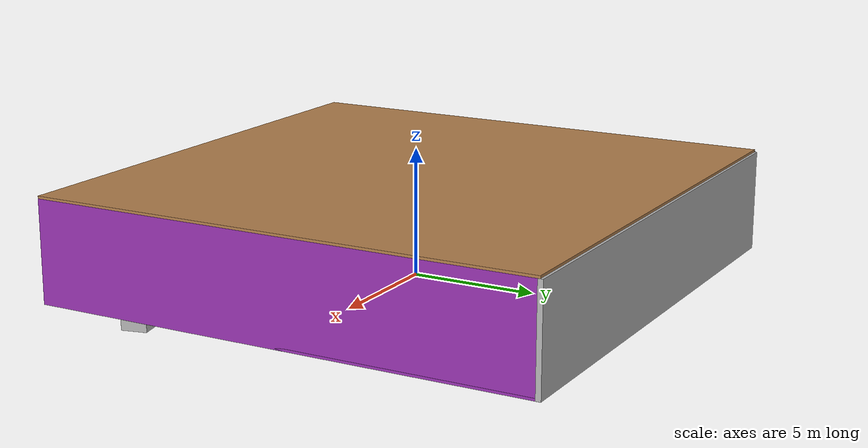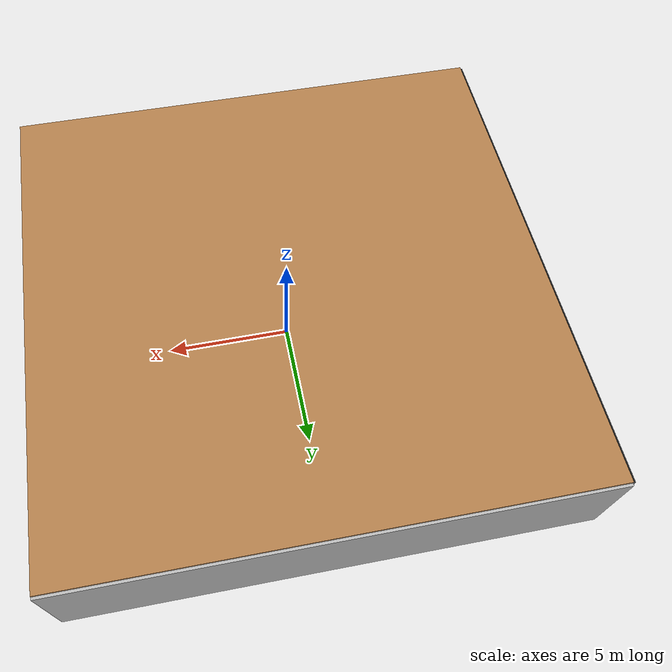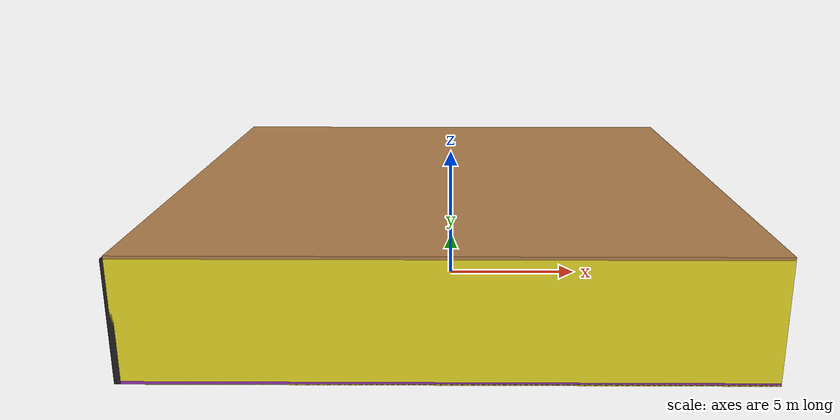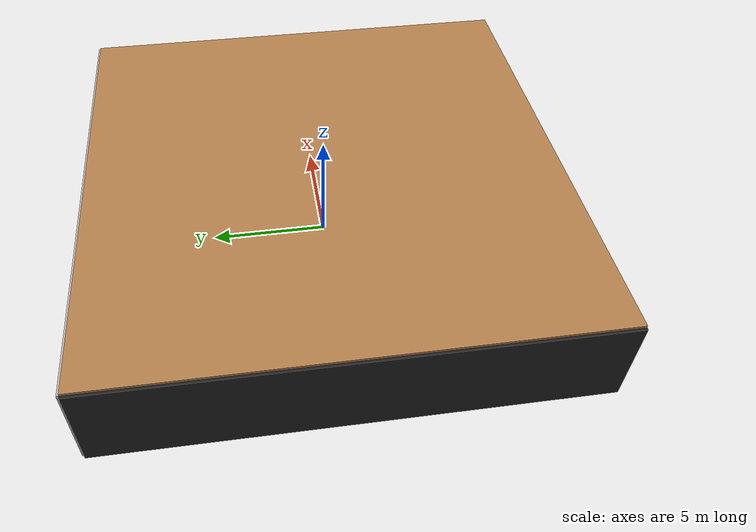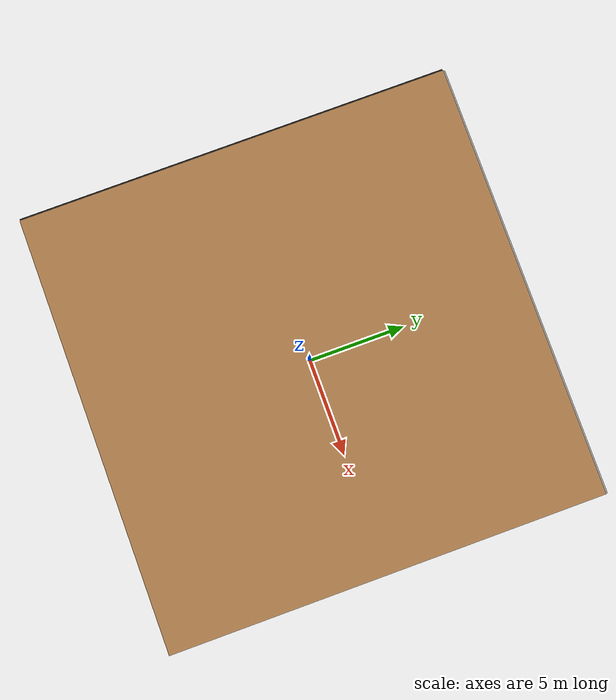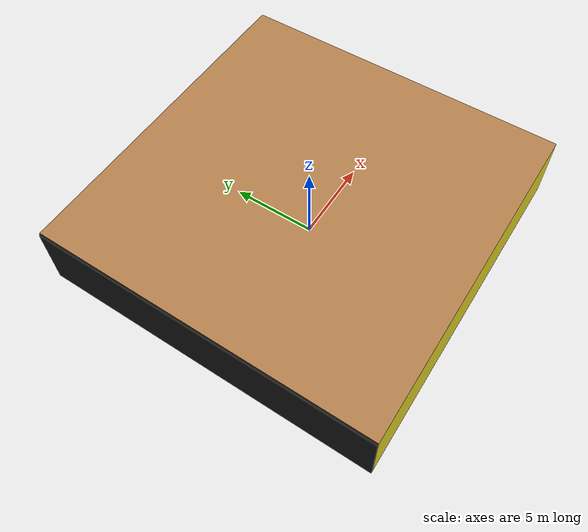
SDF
<sdf version="1.4">
 <world name="default">
  <physics type="ode">
   <max_step_size>0.001</max_step_size>
   <real_time_factor>1</real_time_factor>
   <real_time_update_rate>1000</real_time_update_rate>
   <gravity>0 0 -9.8</gravity>
  </physics>
  <scene><ambient>0.4 0.4 0.4 1</ambient><background>0.7 0.7 0.7 1</background><shadows>1</shadows></scene>
  <model name="Surrounding">
   <static>1</static>
   <link name="Ceiling">
    <collision name="Ceiling_Collision"><geometry><box><size>20 20 0.1</size></box></geometry></collision>
    <visual name="Ceiling_Visual">
     <geometry><box><size>20 20 0.1</size></box></geometry>
     <material>
      <script><uri>file://media/materials/scripts/gazebo.material</uri><name>Gazebo/Wood</name></script>
     </material>
    </visual>
    <pose>0 0 4.05 0 0 0</pose>
   </link>
   <link name="Wall_South">
    <collision name="Wall_South_Collision">
     <geometry><box><size>20 0 4</size></box></geometry>
     <pose>0 0 2 0 -0 0</pose>
    </collision>
    <visual name="Wall_South_Visual">
     <pose>0 0 2 0 -0 0</pose>
     <geometry><box><size>20 0 4</size></box></geometry>
     <material>
      <script><uri>file://media/materials/scripts/gazebo.material</uri><name>Gazebo/YellowGlow</name></script>
     </material>
    </visual>
    <velocity_decay><linear>0</linear><angular>0</angular></velocity_decay>
    <pose>0 -10 0 0 -0 0</pose>
   </link>
   <link name="Wall_East">
    <collision name="Wall_21_Collision">
     <geometry><box><size>20 0 4</size></box></geometry>
     <pose>0 0 2 0 -0 0</pose>
    </collision>
    <visual name="Wall_21_Visual">
     <pose>0 0 2 0 -0 0</pose>
     <geometry><box><size>20 0 4</size></box></geometry>
     <material>
      <script><uri>file://media/materials/scripts/gazebo.material</uri><name>Gazebo/PurpleGlow</name></script>
     </material>
    </visual>
    <velocity_decay><linear>0</linear><angular>0</angular></velocity_decay>
    <pose>10 0 0 0 -0 1.5708</pose>
   </link>
   <link name="Wall_North">
    <collision name="Wall_22_Collision">
     <geometry><box><size>20 0.2 4</size></box></geometry>
     <pose>0 0 2 0 -0 0</pose>
    </collision>
    <visual name="Wall_22_Visual">
     <pose>0 0 2 0 -0 0</pose>
     <geometry><box><size>20 0.2 4</size></box></geometry>
     <material>
      <script><uri>file://media/materials/scripts/gazebo.material</uri><name>Gazebo/LightOff</name></script>
     </material>
    </visual>
    <velocity_decay><linear>0</linear><angular>0</angular></velocity_decay>
    <pose>0 10 0 0 -0 0</pose>
   </link>
   <link name="Wall_West">
    <collision name="Wall_23_Collision">
     <geometry><box><size>20 0.2 4</size></box></geometry>
     <pose>0 0 2 0 -0 0</pose>
    </collision>
    <visual name="Wall_23_Visual">
     <pose>0 0 2 0 -0 0</pose>
     <geometry><box><size>20 0.2 4</size></box></geometry>
     <material>
      <script><uri>file://media/materials/scripts/gazebo.material</uri><name>Gazebo/FlatBlack</name></script>
     </material>
    </visual>
    <velocity_decay><linear>0</linear><angular>0</angular></velocity_decay>
    <pose>-10 0 0 0 0 -1.5708</pose>
   </link>
   <link name="Ground_link">
    <collision name="collision">
     <pose>0 0 .05 0 -0 0</pose>
     <geometry><box><size>20 20 0.1</size></box></geometry>
    </collision>
    <visual name="visual">
     <pose>0 0 .05 0 -0 0</pose>
     <geometry><box><size>20 20 0.1</size></box></geometry>
     <material>
      <script><uri>file://media/materials/scripts/gazebo.material</uri><name>Gazebo/Purple</name></script>
     </material>
    </visual>
   </link>
   <static>1</static>
  </model>
  <spherical_coordinates>
   <surface_model>EARTH_WGS84</surface_model>
   <latitude_deg>0</latitude_deg>
   <longitude_deg>0</longitude_deg>
   <elevation>0</elevation>
   <heading_deg>0</heading_deg>
  </spherical_coordinates>
  <light name="lightball_0" type="diffuse">
   <diffuse>0.8 0.8 0.8 1</diffuse>
   <specular>0.2 0.2 0.2 1</specular>
   <attenuation>
    <range>100</range>
    <constant>0.7</constant>
    <linear>0.01</linear>
    <quadratic>0.001</quadratic>
   </attenuation>
   <direction>-0.5 0.1 -0.9</direction>
   <pose>-8.75790360865 -0.269458963113 2.74306014166 0 0 0</pose>
  </light>
  <light name="lightball_1" type="diffuse">
   <diffuse>0.8 0.8 0.8 1</diffuse>
   <specular>0.2 0.2 0.2 1</specular>
   <attenuation>
    <range>100</range>
    <constant>0.7</constant>
    <linear>0.01</linear>
    <quadratic>0.001</quadratic>
   </attenuation>
   <direction>-0.5 0.1 -0.9</direction>
   <pose>-3.00658685544 7.95882170196 2.84467272291 0 0 0</pose>
  </light>
  <light name="lightball_2" type="diffuse">
   <diffuse>0.8 0.8 0.8 1</diffuse>
   <specular>0.2 0.2 0.2 1</specular>
   <attenuation>
    <range>100</range>
    <constant>0.7</constant>
    <linear>0.01</linear>
    <quadratic>0.001</quadratic>
   </attenuation>
   <direction>-0.5 0.1 -0.9</direction>
   <pose>-4.16476252234 -4.17809311574 0.983495994149 0 0 0</pose>
  </light>
  <light name="lightball_3" type="diffuse">
   <diffuse>0.8 0.8 0.8 1</diffuse>
   <specular>0.2 0.2 0.2 1</specular>
   <attenuation>
    <range>100</range>
    <constant>0.7</constant>
    <linear>0.01</linear>
    <quadratic>0.001</quadratic>
   </attenuation>
   <direction>-0.5 0.1 -0.9</direction>
   <pose>-7.12507817006 -1.90489227048 2.98010018709 0 0 0</pose>
  </light>
  <include><uri>model://cabinet</uri><pose>-6.95853735687 4.87066816323 0 0 0 1.55558842759</pose></include>
  <include>
   <uri>model://construction_cone</uri>
   <pose>-4.20687556714 -3.35851786034 0 0 0 0.128356113756</pose>
  </include>
  <include><uri>model://table</uri><pose>4.45332500827 -5.14679171495 0 0 0 1.76842390582</pose></include>
  <include>
   <uri>model://textured_shapes</uri>
   <pose>7.71622037791 -6.58298722695 0 0 0 1.79071068173</pose>
  </include>
  <include><uri>model://cabinet</uri><pose>6.6496538283 -3.48134205129 0 0 0 1.97189867539</pose></include>
  <include><uri>model://table</uri><pose>6.56026802652 7.11477609684 0 0 0 1.56487284296</pose></include>
 </world>
</sdf>

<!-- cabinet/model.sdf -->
<sdf version="1.5">
  <model name="cabinet">
    <static>true</static>
    <link name="cabinet_bottom_plate">
      <inertial>
        <pose>0 0 -1 0 0 0</pose>
        <inertia>
          <ixx>2.050000</ixx>
          <ixy>0</ixy>
          <ixz>0</ixz>
          <iyy>2.050000</iyy>
          <iyz>0</iyz>
          <izz>2.050000</izz>
        </inertia>
        <mass>25.000000</mass>
      </inertial>
      <collision name="cabinet_bottom_plate_geom">
        <pose>0 0 0.010000 0 0 0</pose>
        <geometry>
          <box>
            <size>0.450000 0.450000 0.020000</size>
          </box>
        </geometry>
      </collision>
      <visual name="cabinet_bottom_plate_geom_visual">
        <pose>0 0 0.010000 0 0 0</pose>
        <geometry>
          <box>
            <size>0.450000 0.450000 0.020000</size>
          </box>
        </geometry>
        <material>
          <script>
            <uri>model://media/materials/scripts/gazebo.material</uri>
            <name>Gazebo/Wood</name>
          </script>
        </material>
      </visual>
      <collision name="cabinet_bottom_plate_geom_cabinet_back_plate">
        <pose>0.235000 0 0.510000 0 0 0</pose>
        <geometry>
          <box>
            <size>0.020000 0.450000 1.020000</size>
          </box>
        </geometry>
      </collision>
      <visual name="cabinet_bottom_plate_geom_cabinet_back_plate_visual">
        <pose>0.235000 0 0.510000 0 0 0</pose>
        <geometry>
          <box>
            <size>0.020000 0.450000 1.020000</size>
          </box>
        </geometry>
        <material>
          <script>
            <uri>model://media/materials/scripts/gazebo.material</uri>
            <name>Gazebo/Wood</name>
          </script>
        </material>
      </visual>
      <collision name="cabinet_bottom_plate_geom_cabinet_left_plate">
        <pose>0 0.235000 0.510000 0 0 0</pose>
        <geometry>
          <box>
            <size>0.450000 0.020000 1.020000</size>
          </box>
        </geometry>
      </collision>
      <visual name="cabinet_bottom_plate_geom_cabinet_left_plate_visual">
        <pose>0 0.235000 0.510000 0 0 0</pose>
        <geometry>
          <box>
            <size>0.450000 0.020000 1.020000</size>
          </box>
        </geometry>
        <material>
          <script>
            <uri>model://media/materials/scripts/gazebo.material</uri>
            <name>Gazebo/Wood</name>
          </script>
        </material>
      </visual>
      <collision name="cabinet_bottom_plate_geom_cabinet_middle_plate">
        <pose>0 0 0.510000 0 0 0</pose>
        <geometry>
          <box>
            <size>0.450000 0.450000 0.020000</size>
          </box>
        </geometry>
      </collision>
      <visual name="cabinet_bottom_plate_geom_cabinet_middle_plate_visual">
        <pose>0 0 0.510000 0 0 0</pose>
        <geometry>
          <box>
            <size>0.450000 0.450000 0.020000</size>
          </box>
        </geometry>
        <material>
          <script>
            <uri>model://media/materials/scripts/gazebo.material</uri>
            <name>Gazebo/Wood</name>
          </script>
        </material>
      </visual>
      <collision name="cabinet_bottom_plate_geom_cabinet_right_plate">
        <pose>0 -0.235000 0.510000 0 0 0</pose>
        <geometry>
          <box>
            <size>0.450000 0.020000 1.020000</size>
          </box>
        </geometry>
      </collision>
      <visual name="cabinet_bottom_plate_geom_cabinet_right_plate_visual">
        <pose>0 -0.235000 0.510000 0 0 0</pose>
        <geometry>
          <box>
            <size>0.450000 0.020000 1.020000</size>
          </box>
        </geometry>
        <material>
          <script>
            <uri>model://media/materials/scripts/gazebo.material</uri>
            <name>Gazebo/Wood</name>
          </script>
        </material>
      </visual>
      <collision name="cabinet_bottom_plate_geom_cabinet_top_plate">
        <pose>0 0 1.010000 0 0 0</pose>
        <geometry>
          <box>
            <size>0.450000 0.450000 0.020000</size>
          </box>
        </geometry>
      </collision>
      <visual name="cabinet_bottom_plate_geom_cabinet_top_plate_visual">
        <pose>0 0 1.010000 0 0 0</pose>
        <geometry>
          <box>
            <size>0.450000 0.450000 0.020000</size>
          </box>
        </geometry>
        <material>
          <script>
            <uri>model://media/materials/scripts/gazebo.material</uri>
            <name>Gazebo/Wood</name>
          </script>
        </material>
      </visual>
    </link>
  </model>
</sdf>

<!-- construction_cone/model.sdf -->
<sdf version="1.5">
  <model name="Construction Cone">
    <link name="link">
      <collision name="collision">
        <geometry>
          <mesh>
            <scale>10 10 10</scale>
            <uri>file://isr-testbed/construction_cone/meshes/construction_cone.dae</uri>
          </mesh>
        </geometry>
      </collision>
      <visual name="visual">
        <geometry>
          <mesh>
            <scale>10 10 10</scale>
            <uri>file://isr-testbed/construction_cone/meshes/construction_cone.dae</uri>
          </mesh>
        </geometry>
      </visual>
    </link>
  </model>
</sdf>

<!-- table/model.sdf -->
<sdf version="1.5">
  <model name="table">
    <static>true</static>
    <link name="link">
      <collision name="surface">
        <pose>0 0 1.0 0 0 0</pose>
        <geometry>
          <box>
            <size>1.5 0.8 0.03</size>
          </box>
        </geometry>
        <surface>
          <friction>
            <ode>
              <mu>0.6</mu>
              <mu2>0.6</mu2>
            </ode>
          </friction>
        </surface>
      </collision>
      <visual name="visual1">
        <pose>0 0 1.0 0 0 0</pose>
        <geometry>
          <box>
            <size>1.5 0.8 0.03</size>
          </box>
        </geometry>
        <material>
          <script>
            <uri>model://media/materials/scripts/gazebo.material</uri>
            <name>Gazebo/Wood</name>
          </script>
        </material>
      </visual>
      <collision name="front_left_leg">
        <pose>0.68 0.38 0.5 0 0 0</pose>
        <geometry>
          <cylinder>
            <radius>0.02</radius>
            <length>1.0</length>
          </cylinder>
        </geometry>
      </collision>
      <visual name="front_left_leg">
        <pose>0.68 0.38 0.5 0 0 0</pose>
        <geometry>
          <cylinder>
            <radius>0.02</radius>
            <length>1.0</length>
          </cylinder>
        </geometry>
        <material>
          <script>
            <uri>model://media/materials/scripts/gazebo.material</uri>
            <name>Gazebo/Grey</name>
          </script>
        </material>
      </visual>
      <collision name="front_right_leg">
        <pose>0.68 -0.38 0.5 0 0 0</pose>
        <geometry>
          <cylinder>
            <radius>0.02</radius>
            <length>1.0</length>
          </cylinder>
        </geometry>
      </collision>
      <visual name="front_right_leg">
        <pose>0.68 -0.38 0.5 0 0 0</pose>
        <geometry>
          <cylinder>
            <radius>0.02</radius>
            <length>1.0</length>
          </cylinder>
        </geometry>
        <material>
          <script>
            <uri>model://media/materials/scripts/gazebo.material</uri>
            <name>Gazebo/Grey</name>
          </script>
        </material>
      </visual>
      <collision name="back_right_leg">
        <pose>-0.68 -0.38 0.5 0 0 0</pose>
        <geometry>
          <cylinder>
            <radius>0.02</radius>
            <length>1.0</length>
          </cylinder>
        </geometry>
      </collision>
      <visual name="back_right_leg">
        <pose>-0.68 -0.38 0.5 0 0 0</pose>
        <geometry>
          <cylinder>
            <radius>0.02</radius>
            <length>1.0</length>
          </cylinder>
        </geometry>
        <material>
          <script>
            <uri>model://media/materials/scripts/gazebo.material</uri>
            <name>Gazebo/Grey</name>
          </script>
        </material>
      </visual>
      <collision name="back_left_leg">
        <pose>-0.68 0.38 0.5 0 0 0</pose>
        <geometry>
          <cylinder>
            <radius>0.02</radius>
            <length>1.0</length>
          </cylinder>
        </geometry>
      </collision>
      <visual name="back_left_leg">
        <pose>-0.68 0.38 0.5 0 0 0</pose>
        <geometry>
          <cylinder>
            <radius>0.02</radius>
            <length>1.0</length>
          </cylinder>
        </geometry>
        <material>
          <script>
            <uri>model://media/materials/scripts/gazebo.material</uri>
            <name>Gazebo/Grey</name>
          </script>
        </material>
      </visual>
    </link>
  </model>
</sdf>

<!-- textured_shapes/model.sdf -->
<sdf version="1.6">
  <model name="textured_shapes">
    <pose>0 0 0.5 0 0 0</pose>
    <link name="box">
      <pose>0 -1.5 0 0 0 0</pose>
      <collision name="collision">
        <geometry>
          <box>
            <size>1 1 1</size>
          </box>
        </geometry>
      </collision>
      <visual name="visual">
        <geometry>
          <box>
            <size>1 1 1</size>
          </box>
        </geometry>
        <material>
          <script>
            <uri>model://../model_source/models/textured_shapes/materials/scripts</uri>
            <uri>model://../model_source/models/textured_shapes/materials/textures</uri>
            <name>TexturedShape/Squares</name>
          </script>
        </material>
      </visual>
    </link>
    <link name="sphere">
      <collision name="collision">
        <geometry>
          <sphere>
            <radius>0.5</radius>
          </sphere>
        </geometry>
      </collision>
      <visual name="visual">
        <geometry>
          <sphere>
            <radius>0.5</radius>
          </sphere>
        </geometry>
        <material>
          <script>
            <uri>model://../model_source/models/textured_shapes/materials/scripts</uri>
            <uri>model://../model_source/models/textured_shapes/materials/textures</uri>
            <name>TexturedShape/Squares</name>
          </script>
        </material>
      </visual>
    </link>
    <link name="cylinder">
      <pose>0 1.5 0 0 0 0</pose>
      <collision name="collision">
        <geometry>
          <cylinder>
            <radius>0.5</radius>
            <length>1</length>
          </cylinder>
        </geometry>
      </collision>
      <visual name="visual">
        <geometry>
          <cylinder>
            <radius>0.5</radius>
            <length>1</length>
          </cylinder>
        </geometry>
        <material>
          <script>
            <uri>model://../model_source/models/textured_shapes/materials/scripts</uri>
            <uri>model://../model_source/models/textured_shapes/materials/textures</uri>
            <name>TexturedShape/Squares</name>
          </script>
        </material>
      </visual>
    </link>
  </model>
</sdf>
